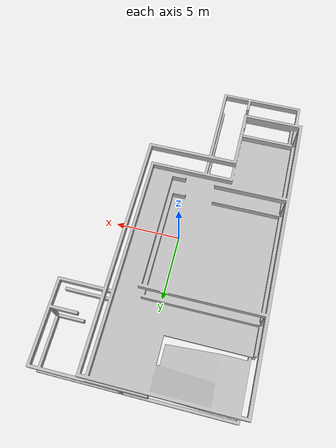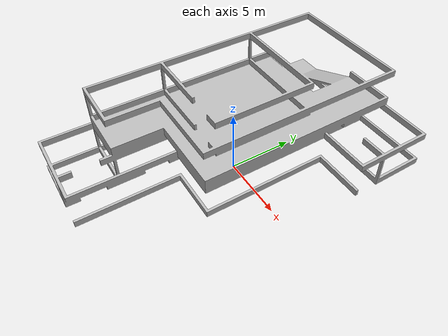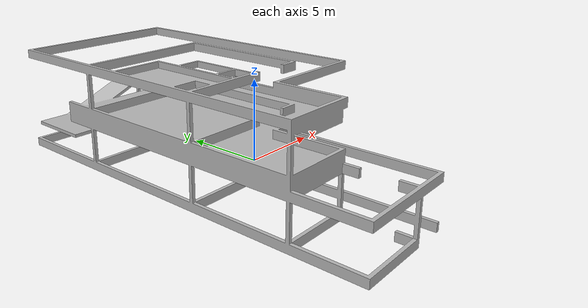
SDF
<?xml version='1.0'?>
<sdf version="1.4">
<model name="imaginary">
  <pose>0 0 3.1 0 0 0</pose>
  <static>true</static>
    <link name="link">
      <collision name="collision">
        <geometry>
          <mesh><uri>file://models/imaginary/imaginary.stl</uri></mesh>
        </geometry>
      </collision>
      <visual name="visual">
        <geometry>
          <mesh><uri>file://models/imaginary/imaginary.stl</uri></mesh>
        </geometry>
      </visual>
    </link>
  </model>
</sdf>
